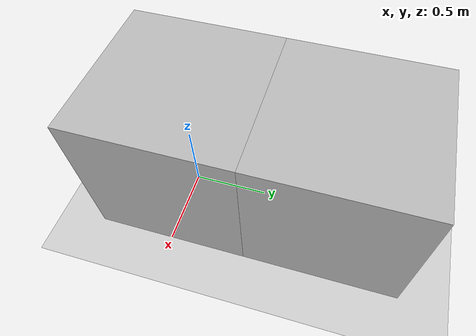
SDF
<?xml version="1.0"?>
<sdf version="1.4">
  <world name="default">

    <!-- Ground Plane -->
    <include>
      <uri>model://ground_plane</uri>
    </include>

    <include>
      <uri>model://sun</uri>
    </include>

    <model name="box">
      <pose>0 0 0.5 0 0 0</pose>
      <link name="link">
        <collision name="collision">
          <geometry>
            <box>
              <size>1 1 1</size>
            </box>
          </geometry>
        </collision>

        <visual name="visual">
          <geometry>
            <box>
              <size>1 1 1</size>
            </box>
          </geometry>
        </visual>
      </link>
      <plugin name="model_push" filename="libmodel_push.so"/>
    </model>

    <model name="box2">
      <pose>0 1 0.5 0 0 0</pose>
      <link name="link">
        <collision name="collision">
          <geometry>
            <box>
              <size>1 1 1</size>
            </box>
          </geometry>
        </collision>
        <visual name="visual">
          <geometry>
            <box>
              <size>1 1 1</size>
            </box>
          </geometry>
        </visual>
        <gravity>1</gravity>
        <inertial>
			   <mass>26.36</mass>
			   <pose>0 0 0 0 0 0</pose>
			   <inertia>
          <ixx>0.222</ixx><ixy>0</ixy><ixz>0.0156</ixz>
          <iyy>0.3553</iyy><iyz>0.0017</iyz><izz>0.5236</izz>
         </inertia>
		    </inertial>
      </link>
      <plugin name="pose_mod" filename="libpose_mod.so"/>
    </model>
  </world>
</sdf>
